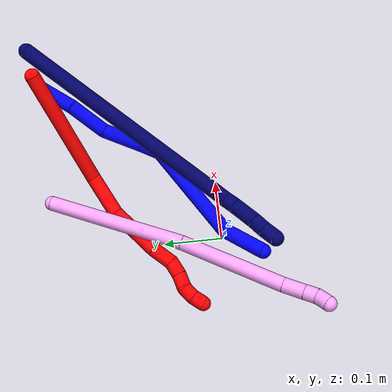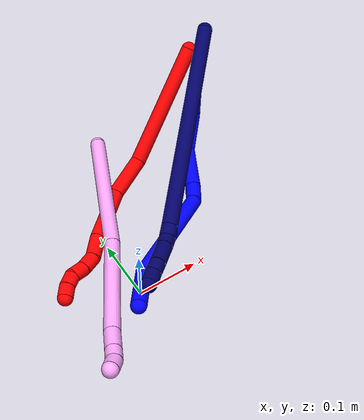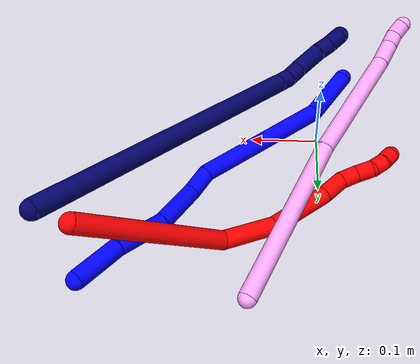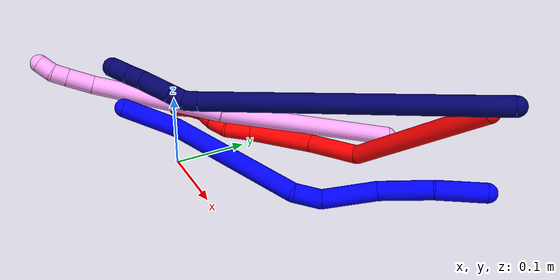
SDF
<sdf version="1.7">
 <world name="default">
  <model name="1">
   <static>0</static>
   <link name="1">
    <collision name="collision-cylinder-e_1_1_4">
     <pose>-0.01753 -0.010428 -0.023981 2.73139 -0.590569 -1.94192</pose>
     <geometry><cylinder><radius>0.0125</radius><length>0.062964</length></cylinder></geometry>
     <surface>
      <friction><ode><mu>1.16</mu><mu2>1.16</mu2><slip1>0</slip1><slip2>0</slip2></ode></friction>
      <contact><ode><kp>1e+06</kp><kd>1</kd><max_vel>0</max_vel><min_depth>0.001</min_depth></ode></contact>
     </surface>
    </collision>
    <visual name="visual-cylinder-e_1_1_4">
     <pose>-0.01753 -0.010428 -0.023981 2.73139 -0.590569 -1.94192</pose>
     <geometry><cylinder><radius>0.0125</radius><length>0.062964</length></cylinder></geometry>
     <material><ambient>0 0 1 1</ambient></material>
    </visual>
    <collision name="collision-cylinder-e_2_4_5">
     <pose>-0.056781 -0.036308 -0.070716 2.54508 -0.66841 -1.69224</pose>
     <geometry><cylinder><radius>0.0125</radius><length>0.070094</length></cylinder></geometry>
     <surface>
      <friction><ode><mu>1.16</mu><mu2>1.16</mu2><slip1>0</slip1><slip2>0</slip2></ode></friction>
      <contact><ode><kp>1e+06</kp><kd>1</kd><max_vel>0</max_vel><min_depth>0.001</min_depth></ode></contact>
     </surface>
    </collision>
    <visual name="visual-cylinder-e_2_4_5">
     <pose>-0.056781 -0.036308 -0.070716 2.54508 -0.66841 -1.69224</pose>
     <geometry><cylinder><radius>0.0125</radius><length>0.070094</length></cylinder></geometry>
     <material><ambient>0 0 1 1</ambient></material>
    </visual>
    <collision name="collision-cylinder-e_3_5_6">
     <pose>-0.103741 -0.058133 -0.11799 2.88727 -0.783548 -2.54136</pose>
     <geometry><cylinder><radius>0.0125</radius><length>0.071523</length></cylinder></geometry>
     <surface>
      <friction><ode><mu>1.16</mu><mu2>1.16</mu2><slip1>0</slip1><slip2>0</slip2></ode></friction>
      <contact><ode><kp>1e+06</kp><kd>1</kd><max_vel>0</max_vel><min_depth>0.001</min_depth></ode></contact>
     </surface>
    </collision>
    <visual name="visual-cylinder-e_3_5_6">
     <pose>-0.103741 -0.058133 -0.11799 2.88727 -0.783548 -2.54136</pose>
     <geometry><cylinder><radius>0.0125</radius><length>0.071523</length></cylinder></geometry>
     <material><ambient>0 0 1 1</ambient></material>
    </visual>
    <collision name="collision-cylinder-e_4_6_7">
     <pose>-0.135858 -0.067642 -0.159125 2.95512 -0.386246 -2.24954</pose>
     <geometry><cylinder><radius>0.0125</radius><length>0.036508</length></cylinder></geometry>
     <surface>
      <friction><ode><mu>1.16</mu><mu2>1.16</mu2><slip1>0</slip1><slip2>0</slip2></ode></friction>
      <contact><ode><kp>1e+06</kp><kd>1</kd><max_vel>0</max_vel><min_depth>0.001</min_depth></ode></contact>
     </surface>
    </collision>
    <visual name="visual-cylinder-e_4_6_7">
     <pose>-0.135858 -0.067642 -0.159125 2.95512 -0.386246 -2.24954</pose>
     <geometry><cylinder><radius>0.0125</radius><length>0.036508</length></cylinder></geometry>
     <material><ambient>0 0 1 1</ambient></material>
    </visual>
    <collision name="collision-cylinder-e_5_7_8">
     <pose>-0.15745 -0.121997 -0.250896 2.54337 -0.160408 -0.509958</pose>
     <geometry><cylinder><radius>0.0125</radius><length>0.184264</length></cylinder></geometry>
     <surface>
      <friction><ode><mu>1.16</mu><mu2>1.16</mu2><slip1>0</slip1><slip2>0</slip2></ode></friction>
      <contact><ode><kp>1e+06</kp><kd>1</kd><max_vel>0</max_vel><min_depth>0.001</min_depth></ode></contact>
     </surface>
    </collision>
    <visual name="visual-cylinder-e_5_7_8">
     <pose>-0.15745 -0.121997 -0.250896 2.54337 -0.160408 -0.509958</pose>
     <geometry><cylinder><radius>0.0125</radius><length>0.184264</length></cylinder></geometry>
     <material><ambient>0 0 1 1</ambient></material>
    </visual>
    <collision name="collision-cylinder-e_6_8_2">
     <pose>-0.182238 -0.181707 -0.360972 2.90313 -0.273255 -1.70803</pose>
     <geometry><cylinder><radius>0.0125</radius><length>0.074647</length></cylinder></geometry>
     <surface>
      <friction><ode><mu>1.16</mu><mu2>1.16</mu2><slip1>0</slip1><slip2>0</slip2></ode></friction>
      <contact><ode><kp>1e+06</kp><kd>1</kd><max_vel>0</max_vel><min_depth>0.001</min_depth></ode></contact>
     </surface>
    </collision>
    <visual name="visual-cylinder-e_6_8_2">
     <pose>-0.182238 -0.181707 -0.360972 2.90313 -0.273255 -1.70803</pose>
     <geometry><cylinder><radius>0.0125</radius><length>0.074647</length></cylinder></geometry>
     <material><ambient>0 0 1 1</ambient></material>
    </visual>
    <collision name="collision-sphere-2">
     <pose>-0.19231 -0.190196 -0.395893 0 -0 0</pose>
     <geometry><sphere><radius>0.0125</radius></sphere></geometry>
     <surface>
      <friction><ode><mu>1.16</mu><mu2>1.16</mu2><slip1>0</slip1><slip2>0</slip2></ode></friction>
      <contact><ode><kp>1e+06</kp><kd>1</kd><max_vel>0</max_vel><min_depth>0.001</min_depth></ode></contact>
     </surface>
    </collision>
    <visual name="visual-sphere-2">
     <pose>-0.19231 -0.190196 -0.395893 0 -0 0</pose>
     <geometry><sphere><radius>0.0125</radius></sphere></geometry>
     <material><ambient>0 0 1 1</ambient></material>
    </visual>
    <collision name="collision-sphere-4">
     <pose>-0.035061 -0.020857 -0.047961 0 -0 0</pose>
     <geometry><sphere><radius>0.0125</radius></sphere></geometry>
     <surface>
      <friction><ode><mu>1.16</mu><mu2>1.16</mu2><slip1>0</slip1><slip2>0</slip2></ode></friction>
      <contact><ode><kp>1e+06</kp><kd>1</kd><max_vel>0</max_vel><min_depth>0.001</min_depth></ode></contact>
     </surface>
    </collision>
    <visual name="visual-sphere-4">
     <pose>-0.035061 -0.020857 -0.047961 0 -0 0</pose>
     <geometry><sphere><radius>0.0125</radius></sphere></geometry>
     <material><ambient>0 0 1 1</ambient></material>
    </visual>
    <collision name="collision-sphere-1">
     <geometry><sphere><radius>0.0125</radius></sphere></geometry>
     <surface>
      <friction><ode><mu>1.16</mu><mu2>1.16</mu2><slip1>0</slip1><slip2>0</slip2></ode></friction>
      <contact><ode><kp>1e+06</kp><kd>1</kd><max_vel>0</max_vel><min_depth>0.001</min_depth></ode></contact>
     </surface>
    </collision>
    <visual name="visual-sphere-1">
     <geometry><sphere><radius>0.0125</radius></sphere></geometry>
     <material><ambient>0 0 1 1</ambient></material>
    </visual>
    <collision name="collision-sphere-8">
     <pose>-0.172165 -0.173218 -0.32605 0 -0 0</pose>
     <geometry><sphere><radius>0.0125</radius></sphere></geometry>
     <surface>
      <friction><ode><mu>1.16</mu><mu2>1.16</mu2><slip1>0</slip1><slip2>0</slip2></ode></friction>
      <contact><ode><kp>1e+06</kp><kd>1</kd><max_vel>0</max_vel><min_depth>0.001</min_depth></ode></contact>
     </surface>
    </collision>
    <visual name="visual-sphere-8">
     <pose>-0.172165 -0.173218 -0.32605 0 -0 0</pose>
     <geometry><sphere><radius>0.0125</radius></sphere></geometry>
     <material><ambient>0 0 1 1</ambient></material>
    </visual>
    <collision name="collision-sphere-5">
     <pose>-0.078501 -0.051759 -0.093471 0 -0 0</pose>
     <geometry><sphere><radius>0.0125</radius></sphere></geometry>
     <surface>
      <friction><ode><mu>1.16</mu><mu2>1.16</mu2><slip1>0</slip1><slip2>0</slip2></ode></friction>
      <contact><ode><kp>1e+06</kp><kd>1</kd><max_vel>0</max_vel><min_depth>0.001</min_depth></ode></contact>
     </surface>
    </collision>
    <visual name="visual-sphere-5">
     <pose>-0.078501 -0.051759 -0.093471 0 -0 0</pose>
     <geometry><sphere><radius>0.0125</radius></sphere></geometry>
     <material><ambient>0 0 1 1</ambient></material>
    </visual>
    <collision name="collision-sphere-6">
     <pose>-0.128981 -0.064507 -0.142509 0 -0 0</pose>
     <geometry><sphere><radius>0.0125</radius></sphere></geometry>
     <surface>
      <friction><ode><mu>1.16</mu><mu2>1.16</mu2><slip1>0</slip1><slip2>0</slip2></ode></friction>
      <contact><ode><kp>1e+06</kp><kd>1</kd><max_vel>0</max_vel><min_depth>0.001</min_depth></ode></contact>
     </surface>
    </collision>
    <visual name="visual-sphere-6">
     <pose>-0.128981 -0.064507 -0.142509 0 -0 0</pose>
     <geometry><sphere><radius>0.0125</radius></sphere></geometry>
     <material><ambient>0 0 1 1</ambient></material>
    </visual>
    <collision name="collision-sphere-7">
     <pose>-0.142735 -0.070777 -0.175741 0 -0 0</pose>
     <geometry><sphere><radius>0.0125</radius></sphere></geometry>
     <surface>
      <friction><ode><mu>1.16</mu><mu2>1.16</mu2><slip1>0</slip1><slip2>0</slip2></ode></friction>
      <contact><ode><kp>1e+06</kp><kd>1</kd><max_vel>0</max_vel><min_depth>0.001</min_depth></ode></contact>
     </surface>
    </collision>
    <visual name="visual-sphere-7">
     <pose>-0.142735 -0.070777 -0.175741 0 -0 0</pose>
     <geometry><sphere><radius>0.0125</radius></sphere></geometry>
     <material><ambient>0 0 1 1</ambient></material>
    </visual>
    <inertial>
     <pose>-0.120159 -0.091745 -0.187783 0 -0 0</pose>
     <mass>0.5</mass>
     <inertia>
      <ixx>5.2e-05</ixx>
      <ixy>0</ixy>
      <ixz>0</ixz>
      <iyy>-0.000656</iyy>
      <iyz>0</iyz>
      <izz>0.000452</izz>
     </inertia>
    </inertial>
   </link>
   <pose>0.292399 0.287967 0.03885 2.6935 -0.829293 1.6114</pose>
  </model>
  <model name="2">
   <static>0</static>
   <link name="2">
    <collision name="collision-cylinder-e_1_1_4">
     <pose>-0.071436 0.027674 -0.069309 -2.7617 -0.763537 2.24834</pose>
     <geometry><cylinder><radius>0.0125</radius><length>0.206617</length></cylinder></geometry>
     <surface>
      <friction><ode><mu>1.16</mu><mu2>1.16</mu2><slip1>0</slip1><slip2>0</slip2></ode></friction>
      <contact><ode><kp>1e+06</kp><kd>1</kd><max_vel>0</max_vel><min_depth>0.001</min_depth></ode></contact>
     </surface>
    </collision>
    <visual name="visual-cylinder-e_1_1_4">
     <pose>-0.071436 0.027674 -0.069309 -2.7617 -0.763537 2.24834</pose>
     <geometry><cylinder><radius>0.0125</radius><length>0.206617</length></cylinder></geometry>
     <material><ambient>1 0 0 1</ambient></material>
    </visual>
    <collision name="collision-cylinder-e_2_4_5">
     <pose>-0.164244 0.047583 -0.166963 2.87423 -0.628759 -2.35725</pose>
     <geometry><cylinder><radius>0.0125</radius><length>0.072677</length></cylinder></geometry>
     <surface>
      <friction><ode><mu>1.16</mu><mu2>1.16</mu2><slip1>0</slip1><slip2>0</slip2></ode></friction>
      <contact><ode><kp>1e+06</kp><kd>1</kd><max_vel>0</max_vel><min_depth>0.001</min_depth></ode></contact>
     </surface>
    </collision>
    <visual name="visual-cylinder-e_2_4_5">
     <pose>-0.164244 0.047583 -0.166963 2.87423 -0.628759 -2.35725</pose>
     <geometry><cylinder><radius>0.0125</radius><length>0.072677</length></cylinder></geometry>
     <material><ambient>1 0 0 1</ambient></material>
    </visual>
    <collision name="collision-cylinder-e_3_5_6">
     <pose>-0.202391 0.029498 -0.236348 2.89522 -0.3774 -1.99119</pose>
     <geometry><cylinder><radius>0.0125</radius><length>0.091043</length></cylinder></geometry>
     <surface>
      <friction><ode><mu>1.16</mu><mu2>1.16</mu2><slip1>0</slip1><slip2>0</slip2></ode></friction>
      <contact><ode><kp>1e+06</kp><kd>1</kd><max_vel>0</max_vel><min_depth>0.001</min_depth></ode></contact>
     </surface>
    </collision>
    <visual name="visual-cylinder-e_3_5_6">
     <pose>-0.202391 0.029498 -0.236348 2.89522 -0.3774 -1.99119</pose>
     <geometry><cylinder><radius>0.0125</radius><length>0.091043</length></cylinder></geometry>
     <material><ambient>1 0 0 1</ambient></material>
    </visual>
    <collision name="collision-cylinder-e_4_6_7">
     <pose>-0.223803 0.015345 -0.295407 2.93201 -0.246578 -1.73404</pose>
     <geometry><cylinder><radius>0.0125</radius><length>0.037995</length></cylinder></geometry>
     <surface>
      <friction><ode><mu>1.16</mu><mu2>1.16</mu2><slip1>0</slip1><slip2>0</slip2></ode></friction>
      <contact><ode><kp>1e+06</kp><kd>1</kd><max_vel>0</max_vel><min_depth>0.001</min_depth></ode></contact>
     </surface>
    </collision>
    <visual name="visual-cylinder-e_4_6_7">
     <pose>-0.223803 0.015345 -0.295407 2.93201 -0.246578 -1.73404</pose>
     <geometry><cylinder><radius>0.0125</radius><length>0.037995</length></cylinder></geometry>
     <material><ambient>1 0 0 1</ambient></material>
    </visual>
    <collision name="collision-cylinder-e_5_7_8">
     <pose>-0.234981 0.005953 -0.323092 2.61964 -0.530589 -1.58798</pose>
     <geometry><cylinder><radius>0.0125</radius><length>0.025854</length></cylinder></geometry>
     <surface>
      <friction><ode><mu>1.16</mu><mu2>1.16</mu2><slip1>0</slip1><slip2>0</slip2></ode></friction>
      <contact><ode><kp>1e+06</kp><kd>1</kd><max_vel>0</max_vel><min_depth>0.001</min_depth></ode></contact>
     </surface>
    </collision>
    <visual name="visual-cylinder-e_5_7_8">
     <pose>-0.234981 0.005953 -0.323092 2.61964 -0.530589 -1.58798</pose>
     <geometry><cylinder><radius>0.0125</radius><length>0.025854</length></cylinder></geometry>
     <material><ambient>1 0 0 1</ambient></material>
    </visual>
    <collision name="collision-cylinder-e_6_8_9">
     <pose>-0.248394 -0.006854 -0.339927 2.35084 -0.592993 -1.26376</pose>
     <geometry><cylinder><radius>0.0125</radius><length>0.024589</length></cylinder></geometry>
     <surface>
      <friction><ode><mu>1.16</mu><mu2>1.16</mu2><slip1>0</slip1><slip2>0</slip2></ode></friction>
      <contact><ode><kp>1e+06</kp><kd>1</kd><max_vel>0</max_vel><min_depth>0.001</min_depth></ode></contact>
     </surface>
    </collision>
    <visual name="visual-cylinder-e_6_8_9">
     <pose>-0.248394 -0.006854 -0.339927 2.35084 -0.592993 -1.26376</pose>
     <geometry><cylinder><radius>0.0125</radius><length>0.024589</length></cylinder></geometry>
     <material><ambient>1 0 0 1</ambient></material>
    </visual>
    <collision name="collision-cylinder-e_7_9_10">
     <pose>-0.259075 -0.01737 -0.35632 2.80098 -0.371382 -1.65903</pose>
     <geometry><cylinder><radius>0.0125</radius><length>0.021</length></cylinder></geometry>
     <surface>
      <friction><ode><mu>1.16</mu><mu2>1.16</mu2><slip1>0</slip1><slip2>0</slip2></ode></friction>
      <contact><ode><kp>1e+06</kp><kd>1</kd><max_vel>0</max_vel><min_depth>0.001</min_depth></ode></contact>
     </surface>
    </collision>
    <visual name="visual-cylinder-e_7_9_10">
     <pose>-0.259075 -0.01737 -0.35632 2.80098 -0.371382 -1.65903</pose>
     <geometry><cylinder><radius>0.0125</radius><length>0.021</length></cylinder></geometry>
     <material><ambient>1 0 0 1</ambient></material>
    </visual>
    <collision name="collision-cylinder-e_8_10_2">
     <pose>-0.264946 -0.022027 -0.375345 3.00091 -0.205152 -1.94111</pose>
     <geometry><cylinder><radius>0.0125</radius><length>0.020226</length></cylinder></geometry>
     <surface>
      <friction><ode><mu>1.16</mu><mu2>1.16</mu2><slip1>0</slip1><slip2>0</slip2></ode></friction>
      <contact><ode><kp>1e+06</kp><kd>1</kd><max_vel>0</max_vel><min_depth>0.001</min_depth></ode></contact>
     </surface>
    </collision>
    <visual name="visual-cylinder-e_8_10_2">
     <pose>-0.264946 -0.022027 -0.375345 3.00091 -0.205152 -1.94111</pose>
     <geometry><cylinder><radius>0.0125</radius><length>0.020226</length></cylinder></geometry>
     <material><ambient>1 0 0 1</ambient></material>
    </visual>
    <collision name="collision-sphere-2">
     <pose>-0.267006 -0.023415 -0.385148 0 -0 0</pose>
     <geometry><sphere><radius>0.0125</radius></sphere></geometry>
     <surface>
      <friction><ode><mu>1.16</mu><mu2>1.16</mu2><slip1>0</slip1><slip2>0</slip2></ode></friction>
      <contact><ode><kp>1e+06</kp><kd>1</kd><max_vel>0</max_vel><min_depth>0.001</min_depth></ode></contact>
     </surface>
    </collision>
    <visual name="visual-sphere-2">
     <pose>-0.267006 -0.023415 -0.385148 0 -0 0</pose>
     <geometry><sphere><radius>0.0125</radius></sphere></geometry>
     <material><ambient>1 0 0 1</ambient></material>
    </visual>
    <collision name="collision-sphere-10">
     <pose>-0.262885 -0.020639 -0.365542 0 -0 0</pose>
     <geometry><sphere><radius>0.0125</radius></sphere></geometry>
     <surface>
      <friction><ode><mu>1.16</mu><mu2>1.16</mu2><slip1>0</slip1><slip2>0</slip2></ode></friction>
      <contact><ode><kp>1e+06</kp><kd>1</kd><max_vel>0</max_vel><min_depth>0.001</min_depth></ode></contact>
     </surface>
    </collision>
    <visual name="visual-sphere-10">
     <pose>-0.262885 -0.020639 -0.365542 0 -0 0</pose>
     <geometry><sphere><radius>0.0125</radius></sphere></geometry>
     <material><ambient>1 0 0 1</ambient></material>
    </visual>
    <collision name="collision-sphere-9">
     <pose>-0.255264 -0.014102 -0.347098 0 -0 0</pose>
     <geometry><sphere><radius>0.0125</radius></sphere></geometry>
     <surface>
      <friction><ode><mu>1.16</mu><mu2>1.16</mu2><slip1>0</slip1><slip2>0</slip2></ode></friction>
      <contact><ode><kp>1e+06</kp><kd>1</kd><max_vel>0</max_vel><min_depth>0.001</min_depth></ode></contact>
     </surface>
    </collision>
    <visual name="visual-sphere-9">
     <pose>-0.255264 -0.014102 -0.347098 0 -0 0</pose>
     <geometry><sphere><radius>0.0125</radius></sphere></geometry>
     <material><ambient>1 0 0 1</ambient></material>
    </visual>
    <collision name="collision-sphere-4">
     <pose>-0.142872 0.055348 -0.138618 0 -0 0</pose>
     <geometry><sphere><radius>0.0125</radius></sphere></geometry>
     <surface>
      <friction><ode><mu>1.16</mu><mu2>1.16</mu2><slip1>0</slip1><slip2>0</slip2></ode></friction>
      <contact><ode><kp>1e+06</kp><kd>1</kd><max_vel>0</max_vel><min_depth>0.001</min_depth></ode></contact>
     </surface>
    </collision>
    <visual name="visual-sphere-4">
     <pose>-0.142872 0.055348 -0.138618 0 -0 0</pose>
     <geometry><sphere><radius>0.0125</radius></sphere></geometry>
     <material><ambient>1 0 0 1</ambient></material>
    </visual>
    <collision name="collision-sphere-1">
     <geometry><sphere><radius>0.0125</radius></sphere></geometry>
     <surface>
      <friction><ode><mu>1.16</mu><mu2>1.16</mu2><slip1>0</slip1><slip2>0</slip2></ode></friction>
      <contact><ode><kp>1e+06</kp><kd>1</kd><max_vel>0</max_vel><min_depth>0.001</min_depth></ode></contact>
     </surface>
    </collision>
    <visual name="visual-sphere-1">
     <geometry><sphere><radius>0.0125</radius></sphere></geometry>
     <material><ambient>1 0 0 1</ambient></material>
    </visual>
    <collision name="collision-sphere-8">
     <pose>-0.241523 0.000394 -0.332757 0 -0 0</pose>
     <geometry><sphere><radius>0.0125</radius></sphere></geometry>
     <surface>
      <friction><ode><mu>1.16</mu><mu2>1.16</mu2><slip1>0</slip1><slip2>0</slip2></ode></friction>
      <contact><ode><kp>1e+06</kp><kd>1</kd><max_vel>0</max_vel><min_depth>0.001</min_depth></ode></contact>
     </surface>
    </collision>
    <visual name="visual-sphere-8">
     <pose>-0.241523 0.000394 -0.332757 0 -0 0</pose>
     <geometry><sphere><radius>0.0125</radius></sphere></geometry>
     <material><ambient>1 0 0 1</ambient></material>
    </visual>
    <collision name="collision-sphere-5">
     <pose>-0.185616 0.039819 -0.195308 0 -0 0</pose>
     <geometry><sphere><radius>0.0125</radius></sphere></geometry>
     <surface>
      <friction><ode><mu>1.16</mu><mu2>1.16</mu2><slip1>0</slip1><slip2>0</slip2></ode></friction>
      <contact><ode><kp>1e+06</kp><kd>1</kd><max_vel>0</max_vel><min_depth>0.001</min_depth></ode></contact>
     </surface>
    </collision>
    <visual name="visual-sphere-5">
     <pose>-0.185616 0.039819 -0.195308 0 -0 0</pose>
     <geometry><sphere><radius>0.0125</radius></sphere></geometry>
     <material><ambient>1 0 0 1</ambient></material>
    </visual>
    <collision name="collision-sphere-6">
     <pose>-0.219166 0.019178 -0.277388 0 -0 0</pose>
     <geometry><sphere><radius>0.0125</radius></sphere></geometry>
     <surface>
      <friction><ode><mu>1.16</mu><mu2>1.16</mu2><slip1>0</slip1><slip2>0</slip2></ode></friction>
      <contact><ode><kp>1e+06</kp><kd>1</kd><max_vel>0</max_vel><min_depth>0.001</min_depth></ode></contact>
     </surface>
    </collision>
    <visual name="visual-sphere-6">
     <pose>-0.219166 0.019178 -0.277388 0 -0 0</pose>
     <geometry><sphere><radius>0.0125</radius></sphere></geometry>
     <material><ambient>1 0 0 1</ambient></material>
    </visual>
    <collision name="collision-sphere-7">
     <pose>-0.22844 0.011512 -0.313427 0 -0 0</pose>
     <geometry><sphere><radius>0.0125</radius></sphere></geometry>
     <surface>
      <friction><ode><mu>1.16</mu><mu2>1.16</mu2><slip1>0</slip1><slip2>0</slip2></ode></friction>
      <contact><ode><kp>1e+06</kp><kd>1</kd><max_vel>0</max_vel><min_depth>0.001</min_depth></ode></contact>
     </surface>
    </collision>
    <visual name="visual-sphere-7">
     <pose>-0.22844 0.011512 -0.313427 0 -0 0</pose>
     <geometry><sphere><radius>0.0125</radius></sphere></geometry>
     <material><ambient>1 0 0 1</ambient></material>
    </visual>
    <inertial>
     <pose>-0.153217 0.02324 -0.181965 0 -0 0</pose>
     <mass>0.5</mass>
     <inertia>
      <ixx>-7.4e-05</ixx>
      <ixy>0</ixy>
      <ixz>0</ixz>
      <iyy>0.000971</iyy>
      <iyz>0</iyz>
      <izz>0.000361</izz>
     </inertia>
    </inertial>
   </link>
   <pose>0.27662 0.28561 0.143308 -1.4806 -0.432116 -0.45858</pose>
  </model>
  <model name="4">
   <static>0</static>
   <link name="4">
    <collision name="collision-cylinder-e_1_1_4">
     <pose>-0.015938 -0.08545 -0.083911 2.34711 -0.1323 -0.313215</pose>
     <geometry><cylinder><radius>0.0125</radius><length>0.241635</length></cylinder></geometry>
     <surface>
      <friction><ode><mu>1.16</mu><mu2>1.16</mu2><slip1>0</slip1><slip2>0</slip2></ode></friction>
      <contact><ode><kp>1e+06</kp><kd>1</kd><max_vel>0</max_vel><min_depth>0.001</min_depth></ode></contact>
     </surface>
    </collision>
    <visual name="visual-cylinder-e_1_1_4">
     <pose>-0.015938 -0.08545 -0.083911 2.34711 -0.1323 -0.313215</pose>
     <geometry><cylinder><radius>0.0125</radius><length>0.241635</length></cylinder></geometry>
     <material><ambient>1 0.65098 0.996078 1</ambient></material>
    </visual>
    <collision name="collision-cylinder-e_2_4_5">
     <pose>-0.046181 -0.240317 -0.222957 2.24202 -0.160002 -0.329117</pose>
     <geometry><cylinder><radius>0.0125</radius><length>0.179591</length></cylinder></geometry>
     <surface>
      <friction><ode><mu>1.16</mu><mu2>1.16</mu2><slip1>0</slip1><slip2>0</slip2></ode></friction>
      <contact><ode><kp>1e+06</kp><kd>1</kd><max_vel>0</max_vel><min_depth>0.001</min_depth></ode></contact>
     </surface>
    </collision>
    <visual name="visual-cylinder-e_2_4_5">
     <pose>-0.046181 -0.240317 -0.222957 2.24202 -0.160002 -0.329117</pose>
     <geometry><cylinder><radius>0.0125</radius><length>0.179591</length></cylinder></geometry>
     <material><ambient>1 0.65098 0.996078 1</ambient></material>
    </visual>
    <collision name="collision-cylinder-e_3_5_6">
     <pose>-0.06125 -0.323922 -0.289097 2.23053 -0.042415 -0.086539</pose>
     <geometry><cylinder><radius>0.0125</radius><length>0.035945</length></cylinder></geometry>
     <surface>
      <friction><ode><mu>1.16</mu><mu2>1.16</mu2><slip1>0</slip1><slip2>0</slip2></ode></friction>
      <contact><ode><kp>1e+06</kp><kd>1</kd><max_vel>0</max_vel><min_depth>0.001</min_depth></ode></contact>
     </surface>
    </collision>
    <visual name="visual-cylinder-e_3_5_6">
     <pose>-0.06125 -0.323922 -0.289097 2.23053 -0.042415 -0.086539</pose>
     <geometry><cylinder><radius>0.0125</radius><length>0.035945</length></cylinder></geometry>
     <material><ambient>1 0.65098 0.996078 1</ambient></material>
    </visual>
    <collision name="collision-cylinder-e_4_6_7">
     <pose>-0.062173 -0.346458 -0.306401 2.2172 -0.015405 -0.030919</pose>
     <geometry><cylinder><radius>0.0125</radius><length>0.020916</length></cylinder></geometry>
     <surface>
      <friction><ode><mu>1.16</mu><mu2>1.16</mu2><slip1>0</slip1><slip2>0</slip2></ode></friction>
      <contact><ode><kp>1e+06</kp><kd>1</kd><max_vel>0</max_vel><min_depth>0.001</min_depth></ode></contact>
     </surface>
    </collision>
    <visual name="visual-cylinder-e_4_6_7">
     <pose>-0.062173 -0.346458 -0.306401 2.2172 -0.015405 -0.030919</pose>
     <geometry><cylinder><radius>0.0125</radius><length>0.020916</length></cylinder></geometry>
     <material><ambient>1 0.65098 0.996078 1</ambient></material>
    </visual>
    <collision name="collision-cylinder-e_5_7_2">
     <pose>-0.062329 -0.365243 -0.316031 1.8797 0.000438 0.0006</pose>
     <geometry><cylinder><radius>0.0125</radius><length>0.021913</length></cylinder></geometry>
     <surface>
      <friction><ode><mu>1.16</mu><mu2>1.16</mu2><slip1>0</slip1><slip2>0</slip2></ode></friction>
      <contact><ode><kp>1e+06</kp><kd>1</kd><max_vel>0</max_vel><min_depth>0.001</min_depth></ode></contact>
     </surface>
    </collision>
    <visual name="visual-cylinder-e_5_7_2">
     <pose>-0.062329 -0.365243 -0.316031 1.8797 0.000438 0.0006</pose>
     <geometry><cylinder><radius>0.0125</radius><length>0.021913</length></cylinder></geometry>
     <material><ambient>1 0.65098 0.996078 1</ambient></material>
    </visual>
    <collision name="collision-sphere-2">
     <pose>-0.062324 -0.375681 -0.319362 0 -0 0</pose>
     <geometry><sphere><radius>0.0125</radius></sphere></geometry>
     <surface>
      <friction><ode><mu>1.16</mu><mu2>1.16</mu2><slip1>0</slip1><slip2>0</slip2></ode></friction>
      <contact><ode><kp>1e+06</kp><kd>1</kd><max_vel>0</max_vel><min_depth>0.001</min_depth></ode></contact>
     </surface>
    </collision>
    <visual name="visual-sphere-2">
     <pose>-0.062324 -0.375681 -0.319362 0 -0 0</pose>
     <geometry><sphere><radius>0.0125</radius></sphere></geometry>
     <material><ambient>1 0.65098 0.996078 1</ambient></material>
    </visual>
    <collision name="collision-sphere-7">
     <pose>-0.062334 -0.354805 -0.3127 0 -0 0</pose>
     <geometry><sphere><radius>0.0125</radius></sphere></geometry>
     <surface>
      <friction><ode><mu>1.16</mu><mu2>1.16</mu2><slip1>0</slip1><slip2>0</slip2></ode></friction>
      <contact><ode><kp>1e+06</kp><kd>1</kd><max_vel>0</max_vel><min_depth>0.001</min_depth></ode></contact>
     </surface>
    </collision>
    <visual name="visual-sphere-7">
     <pose>-0.062334 -0.354805 -0.3127 0 -0 0</pose>
     <geometry><sphere><radius>0.0125</radius></sphere></geometry>
     <material><ambient>1 0.65098 0.996078 1</ambient></material>
    </visual>
    <collision name="collision-sphere-6">
     <pose>-0.062012 -0.338111 -0.300103 0 -0 0</pose>
     <geometry><sphere><radius>0.0125</radius></sphere></geometry>
     <surface>
      <friction><ode><mu>1.16</mu><mu2>1.16</mu2><slip1>0</slip1><slip2>0</slip2></ode></friction>
      <contact><ode><kp>1e+06</kp><kd>1</kd><max_vel>0</max_vel><min_depth>0.001</min_depth></ode></contact>
     </surface>
    </collision>
    <visual name="visual-sphere-6">
     <pose>-0.062012 -0.338111 -0.300103 0 -0 0</pose>
     <geometry><sphere><radius>0.0125</radius></sphere></geometry>
     <material><ambient>1 0.65098 0.996078 1</ambient></material>
    </visual>
    <collision name="collision-sphere-5">
     <pose>-0.060487 -0.309734 -0.278092 0 -0 0</pose>
     <geometry><sphere><radius>0.0125</radius></sphere></geometry>
     <surface>
      <friction><ode><mu>1.16</mu><mu2>1.16</mu2><slip1>0</slip1><slip2>0</slip2></ode></friction>
      <contact><ode><kp>1e+06</kp><kd>1</kd><max_vel>0</max_vel><min_depth>0.001</min_depth></ode></contact>
     </surface>
    </collision>
    <visual name="visual-sphere-5">
     <pose>-0.060487 -0.309734 -0.278092 0 -0 0</pose>
     <geometry><sphere><radius>0.0125</radius></sphere></geometry>
     <material><ambient>1 0.65098 0.996078 1</ambient></material>
    </visual>
    <collision name="collision-sphere-1">
     <geometry><sphere><radius>0.0125</radius></sphere></geometry>
     <surface>
      <friction><ode><mu>1.16</mu><mu2>1.16</mu2><slip1>0</slip1><slip2>0</slip2></ode></friction>
      <contact><ode><kp>1e+06</kp><kd>1</kd><max_vel>0</max_vel><min_depth>0.001</min_depth></ode></contact>
     </surface>
    </collision>
    <visual name="visual-sphere-1">
     <geometry><sphere><radius>0.0125</radius></sphere></geometry>
     <material><ambient>1 0.65098 0.996078 1</ambient></material>
    </visual>
    <collision name="collision-sphere-4">
     <pose>-0.031875 -0.1709 -0.167823 0 -0 0</pose>
     <geometry><sphere><radius>0.0125</radius></sphere></geometry>
     <surface>
      <friction><ode><mu>1.16</mu><mu2>1.16</mu2><slip1>0</slip1><slip2>0</slip2></ode></friction>
      <contact><ode><kp>1e+06</kp><kd>1</kd><max_vel>0</max_vel><min_depth>0.001</min_depth></ode></contact>
     </surface>
    </collision>
    <visual name="visual-sphere-4">
     <pose>-0.031875 -0.1709 -0.167823 0 -0 0</pose>
     <geometry><sphere><radius>0.0125</radius></sphere></geometry>
     <material><ambient>1 0.65098 0.996078 1</ambient></material>
    </visual>
    <inertial>
     <pose>-0.034025 -0.1814 -0.168085 0 -0 0</pose>
     <mass>0.5</mass>
     <inertia>
      <ixx>0.00106</ixx>
      <ixy>0</ixy>
      <ixz>0</ixz>
      <iyy>-0.001577</iyy>
      <iyz>0</iyz>
      <izz>0.001434</izz>
     </inertia>
    </inertial>
   </link>
   <pose>0.090966 0.287097 0.011534 -1.24389 -0.874927 0.026778</pose>
  </model>
  <model name="7">
   <static>0</static>
   <link name="7">
    <collision name="collision-cylinder-e_1_1_4">
     <pose>-0.019018 0.001826 -0.186716 -3.13182 -0.101502 2.94971</pose>
     <geometry><cylinder><radius>0.0125</radius><length>0.375381</length></cylinder></geometry>
     <surface>
      <friction><ode><mu>1.16</mu><mu2>1.16</mu2><slip1>0</slip1><slip2>0</slip2></ode></friction>
      <contact><ode><kp>1e+06</kp><kd>1</kd><max_vel>0</max_vel><min_depth>0.001</min_depth></ode></contact>
     </surface>
    </collision>
    <visual name="visual-cylinder-e_1_1_4">
     <pose>-0.019018 0.001826 -0.186716 -3.13182 -0.101502 2.94971</pose>
     <geometry><cylinder><radius>0.0125</radius><length>0.375381</length></cylinder></geometry>
     <material><ambient>0.003922 0 0.403922 1</ambient></material>
    </visual>
    <collision name="collision-cylinder-e_2_4_5">
     <pose>-0.039282 0.004041 -0.383727 -3.10378 -0.120257 2.53285</pose>
     <geometry><cylinder><radius>0.0125</radius><length>0.020755</length></cylinder></geometry>
     <surface>
      <friction><ode><mu>1.16</mu><mu2>1.16</mu2><slip1>0</slip1><slip2>0</slip2></ode></friction>
      <contact><ode><kp>1e+06</kp><kd>1</kd><max_vel>0</max_vel><min_depth>0.001</min_depth></ode></contact>
     </surface>
    </collision>
    <visual name="visual-cylinder-e_2_4_5">
     <pose>-0.039282 0.004041 -0.383727 -3.10378 -0.120257 2.53285</pose>
     <geometry><cylinder><radius>0.0125</radius><length>0.020755</length></cylinder></geometry>
     <material><ambient>0.003922 0 0.403922 1</ambient></material>
    </visual>
    <collision name="collision-cylinder-e_3_5_6">
     <pose>-0.045276 0.006944 -0.402794 -2.86248 -0.479918 2.09926</pose>
     <geometry><cylinder><radius>0.0125</radius><length>0.020574</length></cylinder></geometry>
     <surface>
      <friction><ode><mu>1.16</mu><mu2>1.16</mu2><slip1>0</slip1><slip2>0</slip2></ode></friction>
      <contact><ode><kp>1e+06</kp><kd>1</kd><max_vel>0</max_vel><min_depth>0.001</min_depth></ode></contact>
     </surface>
    </collision>
    <visual name="visual-cylinder-e_3_5_6">
     <pose>-0.045276 0.006944 -0.402794 -2.86248 -0.479918 2.09926</pose>
     <geometry><cylinder><radius>0.0125</radius><length>0.020574</length></cylinder></geometry>
     <material><ambient>0.003922 0 0.403922 1</ambient></material>
    </visual>
    <collision name="collision-cylinder-e_4_6_7">
     <pose>-0.058453 0.014895 -0.42845 -2.83004 -0.443535 1.92481</pose>
     <geometry><cylinder><radius>0.0125</radius><length>0.039276</length></cylinder></geometry>
     <surface>
      <friction><ode><mu>1.16</mu><mu2>1.16</mu2><slip1>0</slip1><slip2>0</slip2></ode></friction>
      <contact><ode><kp>1e+06</kp><kd>1</kd><max_vel>0</max_vel><min_depth>0.001</min_depth></ode></contact>
     </surface>
    </collision>
    <visual name="visual-cylinder-e_4_6_7">
     <pose>-0.058453 0.014895 -0.42845 -2.83004 -0.443535 1.92481</pose>
     <geometry><cylinder><radius>0.0125</radius><length>0.039276</length></cylinder></geometry>
     <material><ambient>0.003922 0 0.403922 1</ambient></material>
    </visual>
    <collision name="collision-cylinder-e_5_7_8">
     <pose>-0.070196 0.023163 -0.454799 -2.85107 -0.32384 1.68087</pose>
     <geometry><cylinder><radius>0.0125</radius><length>0.020842</length></cylinder></geometry>
     <surface>
      <friction><ode><mu>1.16</mu><mu2>1.16</mu2><slip1>0</slip1><slip2>0</slip2></ode></friction>
      <contact><ode><kp>1e+06</kp><kd>1</kd><max_vel>0</max_vel><min_depth>0.001</min_depth></ode></contact>
     </surface>
    </collision>
    <visual name="visual-cylinder-e_5_7_8">
     <pose>-0.070196 0.023163 -0.454799 -2.85107 -0.32384 1.68087</pose>
     <geometry><cylinder><radius>0.0125</radius><length>0.020842</length></cylinder></geometry>
     <material><ambient>0.003922 0 0.403922 1</ambient></material>
    </visual>
    <collision name="collision-cylinder-e_6_8_2">
     <pose>-0.078358 0.028922 -0.474372 -2.85949 -0.431472 1.99175</pose>
     <geometry><cylinder><radius>0.0125</radius><length>0.023171</length></cylinder></geometry>
     <surface>
      <friction><ode><mu>1.16</mu><mu2>1.16</mu2><slip1>0</slip1><slip2>0</slip2></ode></friction>
      <contact><ode><kp>1e+06</kp><kd>1</kd><max_vel>0</max_vel><min_depth>0.001</min_depth></ode></contact>
     </surface>
    </collision>
    <visual name="visual-cylinder-e_6_8_2">
     <pose>-0.078358 0.028922 -0.474372 -2.85949 -0.431472 1.99175</pose>
     <geometry><cylinder><radius>0.0125</radius><length>0.023171</length></cylinder></geometry>
     <material><ambient>0.003922 0 0.403922 1</ambient></material>
    </visual>
    <collision name="collision-sphere-2">
     <pose>-0.083203 0.031852 -0.48448 0 -0 0</pose>
     <geometry><sphere><radius>0.0125</radius></sphere></geometry>
     <surface>
      <friction><ode><mu>1.16</mu><mu2>1.16</mu2><slip1>0</slip1><slip2>0</slip2></ode></friction>
      <contact><ode><kp>1e+06</kp><kd>1</kd><max_vel>0</max_vel><min_depth>0.001</min_depth></ode></contact>
     </surface>
    </collision>
    <visual name="visual-sphere-2">
     <pose>-0.083203 0.031852 -0.48448 0 -0 0</pose>
     <geometry><sphere><radius>0.0125</radius></sphere></geometry>
     <material><ambient>0.003922 0 0.403922 1</ambient></material>
    </visual>
    <collision name="collision-sphere-4">
     <pose>-0.038037 0.003651 -0.373432 0 -0 0</pose>
     <geometry><sphere><radius>0.0125</radius></sphere></geometry>
     <surface>
      <friction><ode><mu>1.16</mu><mu2>1.16</mu2><slip1>0</slip1><slip2>0</slip2></ode></friction>
      <contact><ode><kp>1e+06</kp><kd>1</kd><max_vel>0</max_vel><min_depth>0.001</min_depth></ode></contact>
     </surface>
    </collision>
    <visual name="visual-sphere-4">
     <pose>-0.038037 0.003651 -0.373432 0 -0 0</pose>
     <geometry><sphere><radius>0.0125</radius></sphere></geometry>
     <material><ambient>0.003922 0 0.403922 1</ambient></material>
    </visual>
    <collision name="collision-sphere-1">
     <geometry><sphere><radius>0.0125</radius></sphere></geometry>
     <surface>
      <friction><ode><mu>1.16</mu><mu2>1.16</mu2><slip1>0</slip1><slip2>0</slip2></ode></friction>
      <contact><ode><kp>1e+06</kp><kd>1</kd><max_vel>0</max_vel><min_depth>0.001</min_depth></ode></contact>
     </surface>
    </collision>
    <visual name="visual-sphere-1">
     <geometry><sphere><radius>0.0125</radius></sphere></geometry>
     <material><ambient>0.003922 0 0.403922 1</ambient></material>
    </visual>
    <collision name="collision-sphere-8">
     <pose>-0.073513 0.025993 -0.464264 0 -0 0</pose>
     <geometry><sphere><radius>0.0125</radius></sphere></geometry>
     <surface>
      <friction><ode><mu>1.16</mu><mu2>1.16</mu2><slip1>0</slip1><slip2>0</slip2></ode></friction>
      <contact><ode><kp>1e+06</kp><kd>1</kd><max_vel>0</max_vel><min_depth>0.001</min_depth></ode></contact>
     </surface>
    </collision>
    <visual name="visual-sphere-8">
     <pose>-0.073513 0.025993 -0.464264 0 -0 0</pose>
     <geometry><sphere><radius>0.0125</radius></sphere></geometry>
     <material><ambient>0.003922 0 0.403922 1</ambient></material>
    </visual>
    <collision name="collision-sphere-5">
     <pose>-0.040527 0.00443 -0.394022 0 -0 0</pose>
     <geometry><sphere><radius>0.0125</radius></sphere></geometry>
     <surface>
      <friction><ode><mu>1.16</mu><mu2>1.16</mu2><slip1>0</slip1><slip2>0</slip2></ode></friction>
      <contact><ode><kp>1e+06</kp><kd>1</kd><max_vel>0</max_vel><min_depth>0.001</min_depth></ode></contact>
     </surface>
    </collision>
    <visual name="visual-sphere-5">
     <pose>-0.040527 0.00443 -0.394022 0 -0 0</pose>
     <geometry><sphere><radius>0.0125</radius></sphere></geometry>
     <material><ambient>0.003922 0 0.403922 1</ambient></material>
    </visual>
    <collision name="collision-sphere-6">
     <pose>-0.050026 0.009458 -0.411566 0 -0 0</pose>
     <geometry><sphere><radius>0.0125</radius></sphere></geometry>
     <surface>
      <friction><ode><mu>1.16</mu><mu2>1.16</mu2><slip1>0</slip1><slip2>0</slip2></ode></friction>
      <contact><ode><kp>1e+06</kp><kd>1</kd><max_vel>0</max_vel><min_depth>0.001</min_depth></ode></contact>
     </surface>
    </collision>
    <visual name="visual-sphere-6">
     <pose>-0.050026 0.009458 -0.411566 0 -0 0</pose>
     <geometry><sphere><radius>0.0125</radius></sphere></geometry>
     <material><ambient>0.003922 0 0.403922 1</ambient></material>
    </visual>
    <collision name="collision-sphere-7">
     <pose>-0.06688 0.020333 -0.445333 0 -0 0</pose>
     <geometry><sphere><radius>0.0125</radius></sphere></geometry>
     <surface>
      <friction><ode><mu>1.16</mu><mu2>1.16</mu2><slip1>0</slip1><slip2>0</slip2></ode></friction>
      <contact><ode><kp>1e+06</kp><kd>1</kd><max_vel>0</max_vel><min_depth>0.001</min_depth></ode></contact>
     </surface>
    </collision>
    <visual name="visual-sphere-7">
     <pose>-0.06688 0.020333 -0.445333 0 -0 0</pose>
     <geometry><sphere><radius>0.0125</radius></sphere></geometry>
     <material><ambient>0.003922 0 0.403922 1</ambient></material>
    </visual>
    <inertial>
     <pose>-0.028921 0.0053 -0.247279 0 -0 0</pose>
     <mass>0.5</mass>
     <inertia>
      <ixx>-0.003481</ixx>
      <ixy>0</ixy>
      <ixz>0</ixz>
      <iyy>0.005201</iyy>
      <iyz>0</iyz>
      <izz>0.000369</izz>
     </inertia>
    </inertial>
   </link>
   <pose>0.310042 0.288509 0.168071 1.09534 1.08112 1.94844</pose>
  </model>
 </world>
</sdf>
